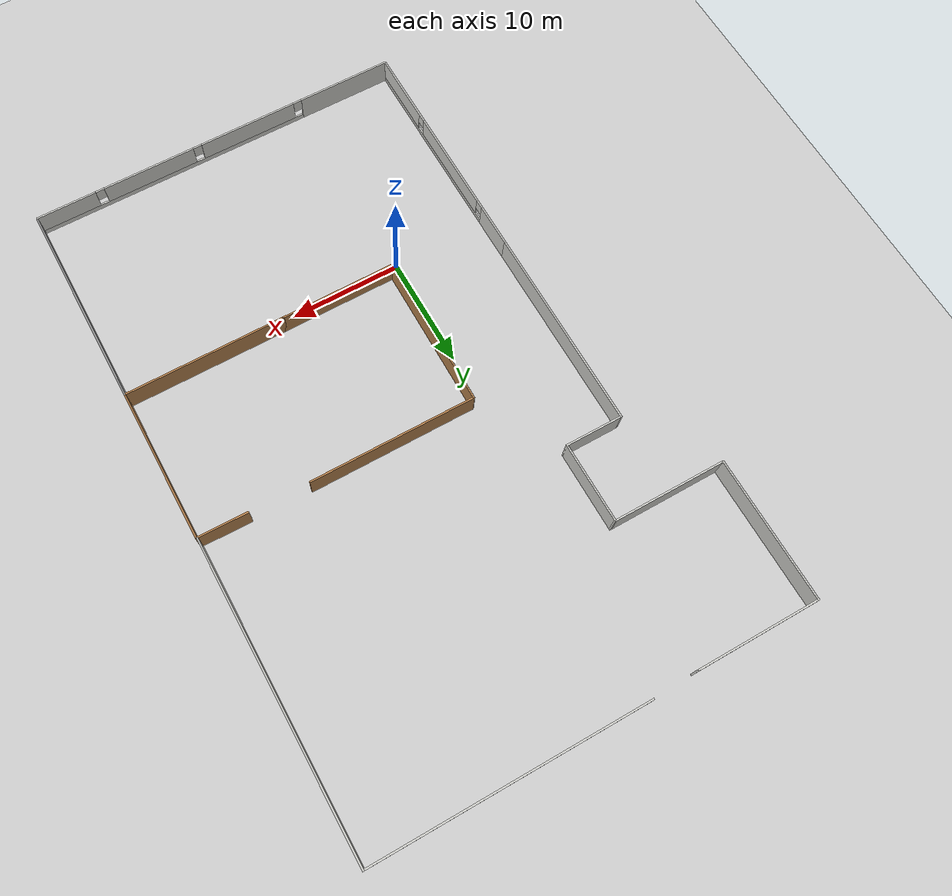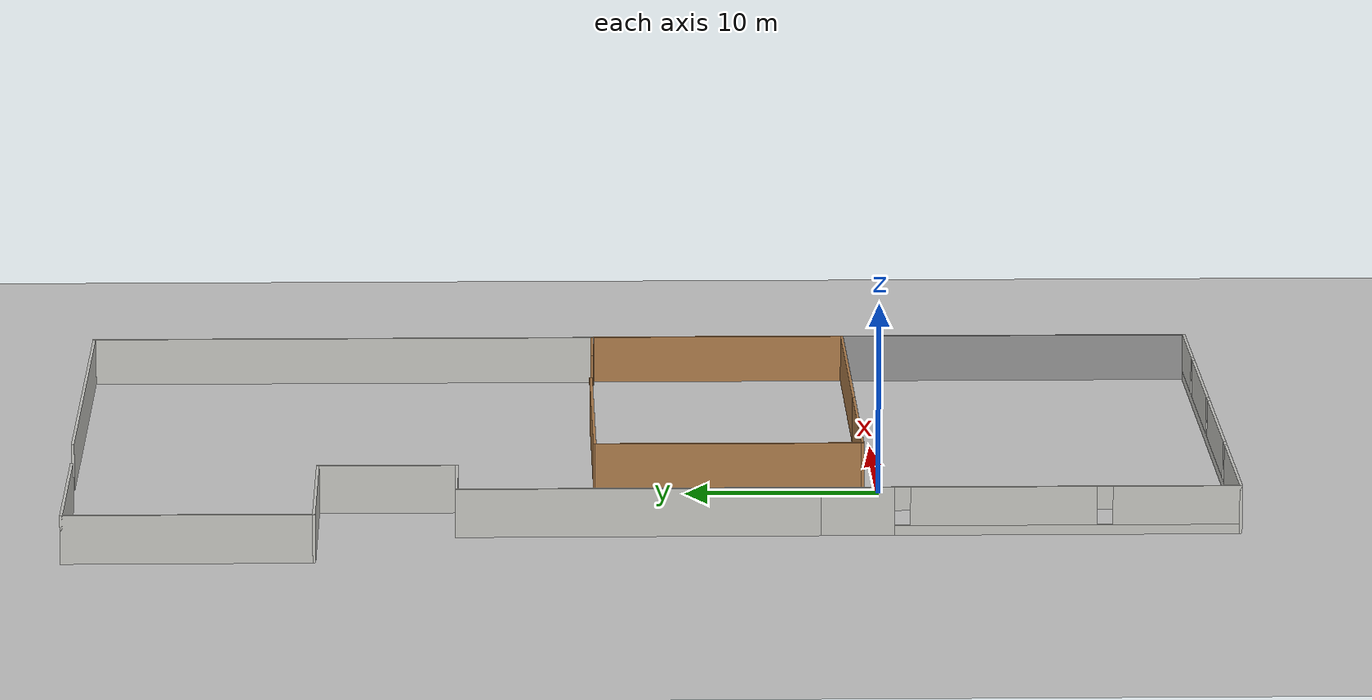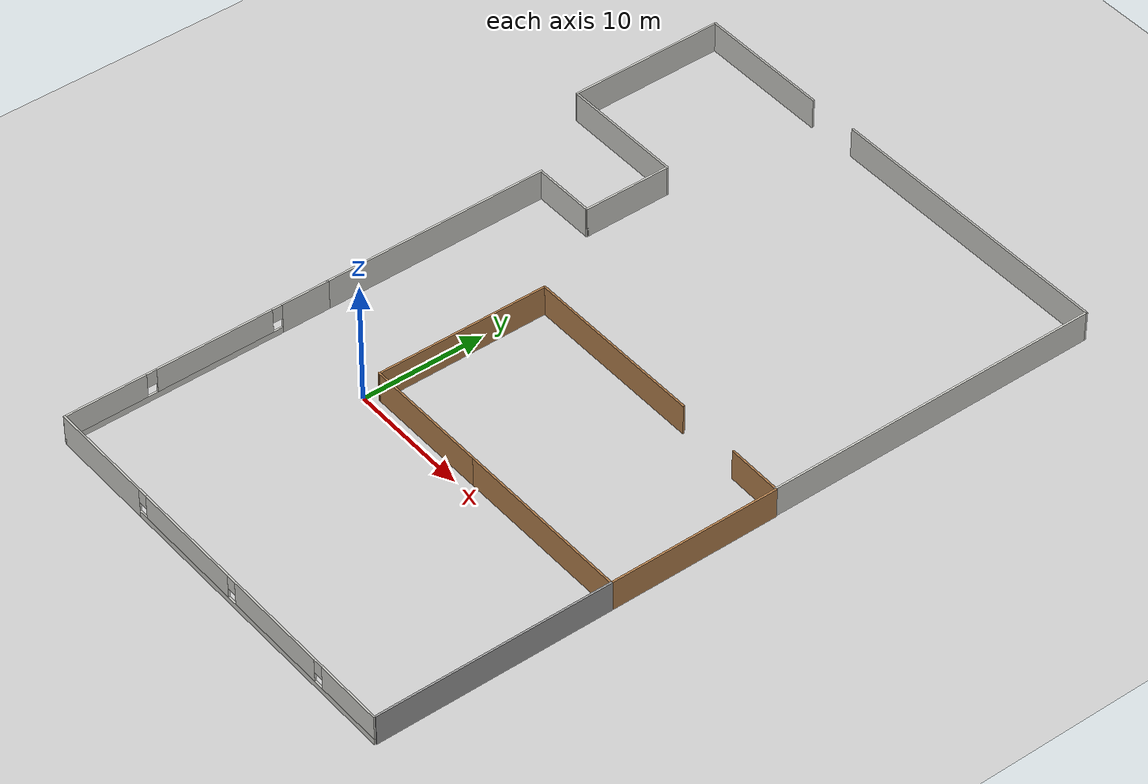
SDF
<sdf version="1.5">
 <world name="flat">
  <include><uri>model://sun</uri></include>
  <include><uri>model://ground_plane</uri></include>
  <include><uri>model://walls</uri></include>
 </world>
</sdf>

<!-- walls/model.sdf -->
<sdf version='1.7'>
  <model name='walls'>
    <pose>5.90996 11.8387 0 0 -0 0</pose>
    <link name='Wall_0'>
      <pose>-14.5819 -19.1 0 0 -0 -1.5708</pose>
      <visual name='Wall_0_Visual_0'>
        <pose>-8.81119 0 1.25 0 -0 0</pose>
        <geometry>
          <box>
            <size>3.87762 0.15 2.5</size>
          </box>
        </geometry>
        <material>
          <script>
            <uri>file://media/materials/scripts/gazebo.material</uri>
            <name>Gazebo/CeilingTiled</name>
          </script>
          <ambient>1 1 1 1</ambient>
        </material>
        <meta>
          <layer>0</layer>
        </meta>
      </visual>
      <collision name='Wall_0_Collision_0'>
        <geometry>
          <box>
            <size>3.87762 0.15 2.5</size>
          </box>
        </geometry>
        <pose>-8.81119 0 1.25 0 -0 0</pose>
      </collision>
      <visual name='Wall_0_Visual_1'>
        <pose>1.93881 0 0.25 0 -0 0</pose>
        <geometry>
          <box>
            <size>17.6224 0.15 0.5</size>
          </box>
        </geometry>
        <material>
          <script>
            <uri>file://media/materials/scripts/gazebo.material</uri>
            <name>Gazebo/CeilingTiled</name>
          </script>
          <ambient>1 1 1 1</ambient>
        </material>
        <meta>
          <layer>0</layer>
        </meta>
      </visual>
      <collision name='Wall_0_Collision_1'>
        <geometry>
          <box>
            <size>17.6224 0.15 0.5</size>
          </box>
        </geometry>
        <pose>1.93881 0 0.25 0 -0 0</pose>
      </collision>
      <visual name='Wall_0_Visual_2'>
        <pose>-1.3447 0 1.5 0 -0 0</pose>
        <geometry>
          <box>
            <size>9.45537 0.15 2</size>
          </box>
        </geometry>
        <material>
          <script>
            <uri>file://media/materials/scripts/gazebo.material</uri>
            <name>Gazebo/CeilingTiled</name>
          </script>
          <ambient>1 1 1 1</ambient>
        </material>
        <meta>
          <layer>0</layer>
        </meta>
      </visual>
      <collision name='Wall_0_Collision_2'>
        <geometry>
          <box>
            <size>9.45537 0.15 2</size>
          </box>
        </geometry>
        <pose>-1.3447 0 1.5 0 -0 0</pose>
      </collision>
      <visual name='Wall_0_Visual_3'>
        <pose>7.4665 0 1.5 0 -0 0</pose>
        <geometry>
          <box>
            <size>6.56701 0.15 2</size>
          </box>
        </geometry>
        <material>
          <script>
            <uri>file://media/materials/scripts/gazebo.material</uri>
            <name>Gazebo/CeilingTiled</name>
          </script>
          <ambient>1 1 1 1</ambient>
        </material>
        <meta>
          <layer>0</layer>
        </meta>
      </visual>
      <collision name='Wall_0_Collision_3'>
        <geometry>
          <box>
            <size>6.56701 0.15 2</size>
          </box>
        </geometry>
        <pose>7.4665 0 1.5 0 -0 0</pose>
      </collision>
      <visual name='Wall_0_Visual_4'>
        <pose>-6.47239 0 1.9 0 -0 0</pose>
        <geometry>
          <box>
            <size>0.8 0.15 1.2</size>
          </box>
        </geometry>
        <material>
          <script>
            <uri>file://media/materials/scripts/gazebo.material</uri>
            <name>Gazebo/CeilingTiled</name>
          </script>
          <ambient>1 1 1 1</ambient>
        </material>
        <meta>
          <layer>0</layer>
        </meta>
      </visual>
      <collision name='Wall_0_Collision_4'>
        <geometry>
          <box>
            <size>0.8 0.15 1.2</size>
          </box>
        </geometry>
        <pose>-6.47239 0 1.9 0 -0 0</pose>
      </collision>
      <visual name='Wall_0_Visual_5'>
        <pose>3.78299 0 1.9 0 -0 0</pose>
        <geometry>
          <box>
            <size>0.8 0.15 1.2</size>
          </box>
        </geometry>
        <material>
          <script>
            <uri>file://media/materials/scripts/gazebo.material</uri>
            <name>Gazebo/CeilingTiled</name>
          </script>
          <ambient>1 1 1 1</ambient>
        </material>
        <meta>
          <layer>0</layer>
        </meta>
      </visual>
      <collision name='Wall_0_Collision_5'>
        <geometry>
          <box>
            <size>0.8 0.15 1.2</size>
          </box>
        </geometry>
        <pose>3.78299 0 1.9 0 -0 0</pose>
      </collision>
    </link>
    <link name='Wall_10'>
      <collision name='Wall_10_Collision'>
        <geometry>
          <box>
            <size>15 0.15 2.5</size>
          </box>
        </geometry>
        <pose>0 0 1.25 0 -0 0</pose>
      </collision>
      <visual name='Wall_10_Visual'>
        <pose>0 0 1.25 0 -0 0</pose>
        <geometry>
          <box>
            <size>15 0.15 2.5</size>
          </box>
        </geometry>
        <material>
          <script>
            <uri>file://media/materials/scripts/gazebo.material</uri>
            <name>Gazebo/Wood</name>
          </script>
          <ambient>1 1 1 1</ambient>
        </material>
        <meta>
          <layer>0</layer>
        </meta>
      </visual>
      <pose>2.37496 2.80047 0 0 -0 3.14159</pose>
    </link>
    <link name='Wall_11'>
      <collision name='Wall_11_Collision'>
        <geometry>
          <box>
            <size>14 0.15 2.5</size>
          </box>
        </geometry>
        <pose>0 0 1.25 0 -0 0</pose>
      </collision>
      <visual name='Wall_11_Visual'>
        <pose>0 0 1.25 0 -0 0</pose>
        <geometry>
          <box>
            <size>14 0.15 2.5</size>
          </box>
        </geometry>
        <material>
          <script>
            <uri>file://media/materials/scripts/gazebo.material</uri>
            <name>Gazebo/Wood</name>
          </script>
          <ambient>1 1 1 1</ambient>
        </material>
        <meta>
          <layer>0</layer>
        </meta>
      </visual>
      <pose>-5.07556 -4.12453 0 0 -0 -1.57448</pose>
    </link>
    <link name='Wall_13'>
      <collision name='Wall_13_Collision'>
        <geometry>
          <box>
            <size>18.5 0.15 2.5</size>
          </box>
        </geometry>
        <pose>0 0 1.25 0 -0 0</pose>
      </collision>
      <visual name='Wall_13_Visual'>
        <pose>0 0 1.25 0 -0 0</pose>
        <geometry>
          <box>
            <size>18.5 0.15 2.5</size>
          </box>
        </geometry>
        <material>
          <script>
            <uri>file://media/materials/scripts/gazebo.material</uri>
            <name>Gazebo/CeilingTiled</name>
          </script>
          <ambient>1 1 1 1</ambient>
        </material>
        <meta>
          <layer>0</layer>
        </meta>
      </visual>
      <pose>-14.5819 0.75 0 0 -0 1.5708</pose>
    </link>
    <link name='Wall_14'>
      <collision name='Wall_14_Collision'>
        <geometry>
          <box>
            <size>5.25 0.15 2.5</size>
          </box>
        </geometry>
        <pose>0 0 1.25 0 -0 0</pose>
      </collision>
      <visual name='Wall_14_Visual'>
        <pose>0 0 1.25 0 -0 0</pose>
        <geometry>
          <box>
            <size>5.25 0.15 2.5</size>
          </box>
        </geometry>
        <material>
          <script>
            <uri>file://media/materials/scripts/gazebo.material</uri>
            <name>Gazebo/CeilingTiled</name>
          </script>
          <ambient>1 1 1 1</ambient>
        </material>
        <meta>
          <layer>0</layer>
        </meta>
      </visual>
      <pose>-12.0319 9.925 0 0 -0 0</pose>
    </link>
    <link name='Wall_15'>
      <collision name='Wall_15_Collision'>
        <geometry>
          <box>
            <size>7.25 0.15 2.5</size>
          </box>
        </geometry>
        <pose>0 0 1.25 0 -0 0</pose>
      </collision>
      <visual name='Wall_15_Visual'>
        <pose>0 0 1.25 0 -0 0</pose>
        <geometry>
          <box>
            <size>7.25 0.15 2.5</size>
          </box>
        </geometry>
        <material>
          <script>
            <uri>file://media/materials/scripts/gazebo.material</uri>
            <name>Gazebo/CeilingTiled</name>
          </script>
          <ambient>1 1 1 1</ambient>
        </material>
        <meta>
          <layer>0</layer>
        </meta>
      </visual>
      <pose>-9.48191 13.475 0 0 -0 1.5708</pose>
    </link>
    <link name='Wall_16'>
      <collision name='Wall_16_Collision'>
        <geometry>
          <box>
            <size>10.25 0.15 2.5</size>
          </box>
        </geometry>
        <pose>0 0 1.25 0 -0 0</pose>
      </collision>
      <visual name='Wall_16_Visual'>
        <pose>0 0 1.25 0 -0 0</pose>
        <geometry>
          <box>
            <size>10.25 0.15 2.5</size>
          </box>
        </geometry>
        <material>
          <script>
            <uri>file://media/materials/scripts/gazebo.material</uri>
            <name>Gazebo/CeilingTiled</name>
          </script>
          <ambient>1 1 1 1</ambient>
        </material>
        <meta>
          <layer>0</layer>
        </meta>
      </visual>
      <pose>-14.5319 17.025 0 0 -0 3.14159</pose>
    </link>
    <link name='Wall_17'>
      <collision name='Wall_17_Collision'>
        <geometry>
          <box>
            <size>12.75 0.15 2.5</size>
          </box>
        </geometry>
        <pose>0 0 1.25 0 -0 0</pose>
      </collision>
      <visual name='Wall_17_Visual'>
        <pose>0 0 1.25 0 -0 0</pose>
        <geometry>
          <box>
            <size>12.75 0.15 2.5</size>
          </box>
        </geometry>
        <material>
          <script>
            <uri>file://media/materials/scripts/gazebo.material</uri>
            <name>Gazebo/CeilingTiled</name>
          </script>
          <ambient>1 1 1 1</ambient>
        </material>
        <meta>
          <layer>0</layer>
        </meta>
      </visual>
      <pose>-19.5819 23.325 0 0 -0 1.5708</pose>
    </link>
    <link name='Wall_18'>
      <collision name='Wall_18_Collision'>
        <geometry>
          <box>
            <size>11 0.15 2.5</size>
          </box>
        </geometry>
        <pose>0 0 1.25 0 -0 0</pose>
      </collision>
      <visual name='Wall_18_Visual'>
        <pose>0 0 1.25 0 -0 0</pose>
        <geometry>
          <box>
            <size>11 0.15 2.5</size>
          </box>
        </geometry>
        <material>
          <script>
            <uri>file://media/materials/scripts/gazebo.material</uri>
            <name>Gazebo/CeilingTiled</name>
          </script>
          <ambient>1 1 1 1</ambient>
        </material>
        <meta>
          <layer>0</layer>
        </meta>
      </visual>
      <pose>-14.1569 29.625 0 0 -0 0</pose>
    </link>
    <link name='Wall_20'>
      <collision name='Wall_20_Collision'>
        <geometry>
          <box>
            <size>27.3276 0.15 2.5</size>
          </box>
        </geometry>
        <pose>0 0 1.25 0 -0 0</pose>
      </collision>
      <visual name='Wall_20_Visual'>
        <pose>0 0 1.25 0 -0 0</pose>
        <geometry>
          <box>
            <size>27.3276 0.15 2.5</size>
          </box>
        </geometry>
        <material>
          <script>
            <uri>file://media/materials/scripts/gazebo.material</uri>
            <name>Gazebo/CeilingTiled</name>
          </script>
          <ambient>1 1 1 1</ambient>
        </material>
        <meta>
          <layer>0</layer>
        </meta>
      </visual>
      <pose>19.5181 16.1862 0 0 -0 1.5708</pose>
    </link>
    <link name='Wall_21'>
      <collision name='Wall_21_Collision'>
        <geometry>
          <box>
            <size>24.25 0.15 2.5</size>
          </box>
        </geometry>
        <pose>0 0 1.25 0 -0 0</pose>
      </collision>
      <visual name='Wall_21_Visual'>
        <pose>0 0 1.25 0 -0 0</pose>
        <geometry>
          <box>
            <size>24.25 0.15 2.5</size>
          </box>
        </geometry>
        <material>
          <script>
            <uri>file://media/materials/scripts/gazebo.material</uri>
            <name>Gazebo/CeilingTiled</name>
          </script>
          <ambient>1 1 1 1</ambient>
        </material>
        <meta>
          <layer>0</layer>
        </meta>
      </visual>
      <pose>7.46809 29.775 0 0 -0 3.14159</pose>
    </link>
    <link name='Wall_27'>
      <collision name='Wall_27_Collision'>
        <geometry>
          <box>
            <size>10.5 0.15 2.5</size>
          </box>
        </geometry>
        <pose>0 0 1.25 0 -0 0</pose>
      </collision>
      <visual name='Wall_27_Visual'>
        <pose>0 0 1.25 0 -0 0</pose>
        <geometry>
          <box>
            <size>10.5 0.15 2.5</size>
          </box>
        </geometry>
        <material>
          <script>
            <uri>file://media/materials/scripts/gazebo.material</uri>
            <name>Gazebo/Wood</name>
          </script>
          <ambient>1 1 1 1</ambient>
        </material>
        <meta>
          <layer>0</layer>
        </meta>
      </visual>
      <pose>0.056909 -11.0495 0 0 -0 0</pose>
    </link>
    <link name='Wall_3'>
      <pose>2.46809 -29.775 0 0 -0 0</pose>
      <visual name='Wall_3_Visual_0'>
        <pose>-12.772 0 1.25 0 -0 0</pose>
        <geometry>
          <box>
            <size>8.70604 0.15 2.5</size>
          </box>
        </geometry>
        <material>
          <script>
            <uri>file://media/materials/scripts/gazebo.material</uri>
            <name>Gazebo/CeilingTiled</name>
          </script>
          <ambient>1 1 1 1</ambient>
        </material>
        <meta>
          <layer>0</layer>
        </meta>
      </visual>
      <collision name='Wall_3_Collision_0'>
        <geometry>
          <box>
            <size>8.70604 0.15 2.5</size>
          </box>
        </geometry>
        <pose>-12.772 0 1.25 0 -0 0</pose>
      </collision>
      <visual name='Wall_3_Visual_1'>
        <pose>4.35302 0 0.25 0 -0 0</pose>
        <geometry>
          <box>
            <size>25.544 0.15 0.5</size>
          </box>
        </geometry>
        <material>
          <script>
            <uri>file://media/materials/scripts/gazebo.material</uri>
            <name>Gazebo/CeilingTiled</name>
          </script>
          <ambient>1 1 1 1</ambient>
        </material>
        <meta>
          <layer>0</layer>
        </meta>
      </visual>
      <collision name='Wall_3_Collision_1'>
        <geometry>
          <box>
            <size>25.544 0.15 0.5</size>
          </box>
        </geometry>
        <pose>4.35302 0 0.25 0 -0 0</pose>
      </collision>
      <visual name='Wall_3_Visual_2'>
        <pose>-3.06334 0 1.5 0 -0 0</pose>
        <geometry>
          <box>
            <size>9.11123 0.15 2</size>
          </box>
        </geometry>
        <material>
          <script>
            <uri>file://media/materials/scripts/gazebo.material</uri>
            <name>Gazebo/CeilingTiled</name>
          </script>
          <ambient>1 1 1 1</ambient>
        </material>
        <meta>
          <layer>0</layer>
        </meta>
      </visual>
      <collision name='Wall_3_Collision_2'>
        <geometry>
          <box>
            <size>9.11123 0.15 2</size>
          </box>
        </geometry>
        <pose>-3.06334 0 1.5 0 -0 0</pose>
      </collision>
      <visual name='Wall_3_Visual_3'>
        <pose>6.57258 0 1.5 0 -0 0</pose>
        <geometry>
          <box>
            <size>8.56061 0.15 2</size>
          </box>
        </geometry>
        <material>
          <script>
            <uri>file://media/materials/scripts/gazebo.material</uri>
            <name>Gazebo/CeilingTiled</name>
          </script>
          <ambient>1 1 1 1</ambient>
        </material>
        <meta>
          <layer>0</layer>
        </meta>
      </visual>
      <collision name='Wall_3_Collision_3'>
        <geometry>
          <box>
            <size>8.56061 0.15 2</size>
          </box>
        </geometry>
        <pose>6.57258 0 1.5 0 -0 0</pose>
      </collision>
      <visual name='Wall_3_Visual_4'>
        <pose>14.3889 0 1.5 0 -0 0</pose>
        <geometry>
          <box>
            <size>5.47212 0.15 2</size>
          </box>
        </geometry>
        <material>
          <script>
            <uri>file://media/materials/scripts/gazebo.material</uri>
            <name>Gazebo/CeilingTiled</name>
          </script>
          <ambient>1 1 1 1</ambient>
        </material>
        <meta>
          <layer>0</layer>
        </meta>
      </visual>
      <collision name='Wall_3_Collision_4'>
        <geometry>
          <box>
            <size>5.47212 0.15 2</size>
          </box>
        </geometry>
        <pose>14.3889 0 1.5 0 -0 0</pose>
      </collision>
      <visual name='Wall_3_Visual_5'>
        <pose>-8.01896 0 1.9 0 -0 0</pose>
        <geometry>
          <box>
            <size>0.8 0.15 1.2</size>
          </box>
        </geometry>
        <material>
          <script>
            <uri>file://media/materials/scripts/gazebo.material</uri>
            <name>Gazebo/CeilingTiled</name>
          </script>
          <ambient>1 1 1 1</ambient>
        </material>
        <meta>
          <layer>0</layer>
        </meta>
      </visual>
      <collision name='Wall_3_Collision_5'>
        <geometry>
          <box>
            <size>0.8 0.15 1.2</size>
          </box>
        </geometry>
        <pose>-8.01896 0 1.9 0 -0 0</pose>
      </collision>
      <visual name='Wall_3_Visual_6'>
        <pose>1.89227 0 1.9 0 -0 0</pose>
        <geometry>
          <box>
            <size>0.8 0.15 1.2</size>
          </box>
        </geometry>
        <material>
          <script>
            <uri>file://media/materials/scripts/gazebo.material</uri>
            <name>Gazebo/CeilingTiled</name>
          </script>
          <ambient>1 1 1 1</ambient>
        </material>
        <meta>
          <layer>0</layer>
        </meta>
      </visual>
      <collision name='Wall_3_Collision_6'>
        <geometry>
          <box>
            <size>0.8 0.15 1.2</size>
          </box>
        </geometry>
        <pose>1.89227 0 1.9 0 -0 0</pose>
      </collision>
      <visual name='Wall_3_Visual_7'>
        <pose>11.2529 0 1.9 0 -0 0</pose>
        <geometry>
          <box>
            <size>0.8 0.15 1.2</size>
          </box>
        </geometry>
        <material>
          <script>
            <uri>file://media/materials/scripts/gazebo.material</uri>
            <name>Gazebo/CeilingTiled</name>
          </script>
          <ambient>1 1 1 1</ambient>
        </material>
        <meta>
          <layer>0</layer>
        </meta>
      </visual>
      <collision name='Wall_3_Collision_7'>
        <geometry>
          <box>
            <size>0.8 0.15 1.2</size>
          </box>
        </geometry>
        <pose>11.2529 0 1.9 0 -0 0</pose>
      </collision>
    </link>
    <link name='Wall_53'>
      <collision name='Wall_53_Collision'>
        <geometry>
          <box>
            <size>14.5 0.15 2.5</size>
          </box>
        </geometry>
        <pose>0 0 1.25 0 -0 0</pose>
      </collision>
      <visual name='Wall_53_Visual'>
        <pose>0 0 1.25 0 -0 0</pose>
        <geometry>
          <box>
            <size>14.5 0.15 2.5</size>
          </box>
        </geometry>
        <material>
          <script>
            <uri>file://media/materials/scripts/gazebo.material</uri>
            <name>Gazebo/Wood</name>
          </script>
          <ambient>1 1 1 1</ambient>
        </material>
        <meta>
          <layer>0</layer>
        </meta>
      </visual>
      <pose>12.4069 -11.0495 0 0 -0 0</pose>
    </link>
    <link name='Wall_54'>
      <collision name='Wall_54_Collision'>
        <geometry>
          <box>
            <size>18.75 0.15 2.5</size>
          </box>
        </geometry>
        <pose>0 0 1.25 0 -0 0</pose>
      </collision>
      <visual name='Wall_54_Visual'>
        <pose>0 0 1.25 0 -0 0</pose>
        <geometry>
          <box>
            <size>18.75 0.15 2.5</size>
          </box>
        </geometry>
        <material>
          <script>
            <uri>file://media/materials/scripts/gazebo.material</uri>
            <name>Gazebo/Grey</name>
          </script>
          <ambient>1 1 1 1</ambient>
        </material>
        <meta>
          <layer>0</layer>
        </meta>
      </visual>
      <pose>19.5819 -20.3495 0 0 -0 -1.5708</pose>
    </link>
    <link name='Wall_56'>
      <collision name='Wall_56_Collision'>
        <geometry>
          <box>
            <size>13.75 0.15 2.5</size>
          </box>
        </geometry>
        <pose>0 0 1.25 0 -0 0</pose>
      </collision>
      <visual name='Wall_56_Visual'>
        <pose>0 0 1.25 0 -0 0</pose>
        <geometry>
          <box>
            <size>13.75 0.15 2.5</size>
          </box>
        </geometry>
        <material>
          <script>
            <uri>file://media/materials/scripts/gazebo.material</uri>
            <name>Gazebo/Wood</name>
          </script>
          <ambient>1 1 1 1</ambient>
        </material>
        <meta>
          <layer>0</layer>
        </meta>
      </visual>
      <pose>19.5819 -4.24953 0 0 -0 1.5708</pose>
    </link>
    <link name='Wall_8'>
      <collision name='Wall_8_Collision'>
        <geometry>
          <box>
            <size>4.5 0.15 2.5</size>
          </box>
        </geometry>
        <pose>0 0 1.25 0 -0 0</pose>
      </collision>
      <visual name='Wall_8_Visual'>
        <pose>0 0 1.25 0 -0 0</pose>
        <geometry>
          <box>
            <size>4.5 0.15 2.5</size>
          </box>
        </geometry>
        <material>
          <script>
            <uri>file://media/materials/scripts/gazebo.material</uri>
            <name>Gazebo/Wood</name>
          </script>
          <ambient>1 1 1 1</ambient>
        </material>
        <meta>
          <layer>0</layer>
        </meta>
      </visual>
      <pose>17.3431 2.63621 0 0 -0 3.12376</pose>
    </link>
    <static>1</static>
  </model>
</sdf>
